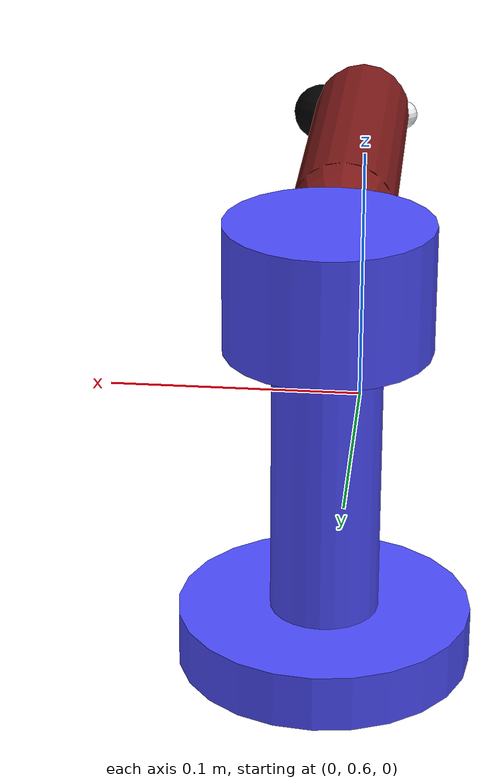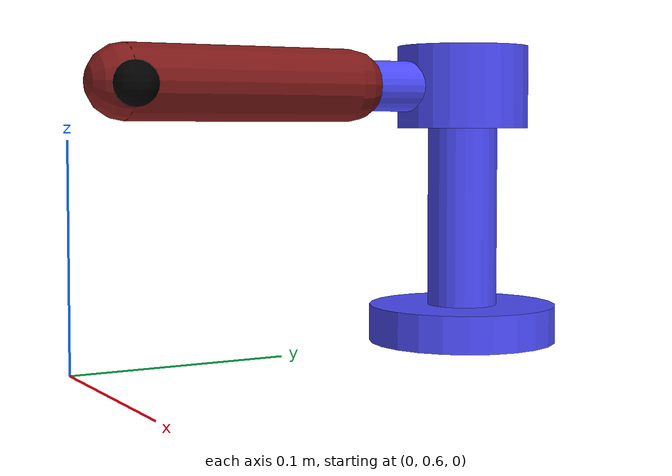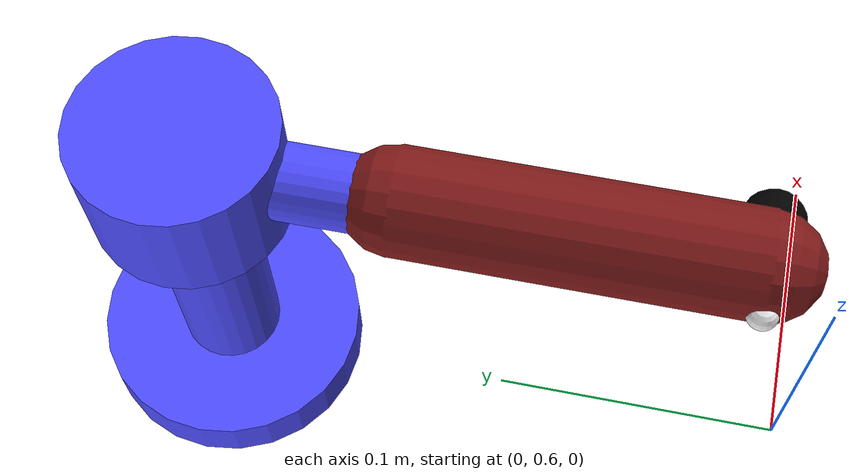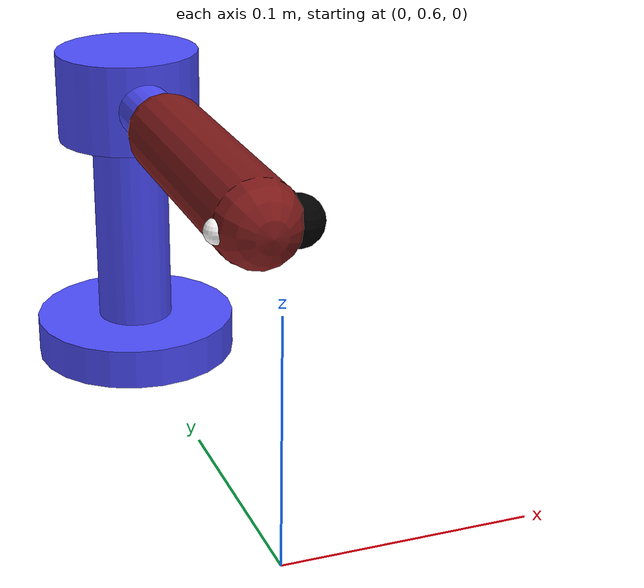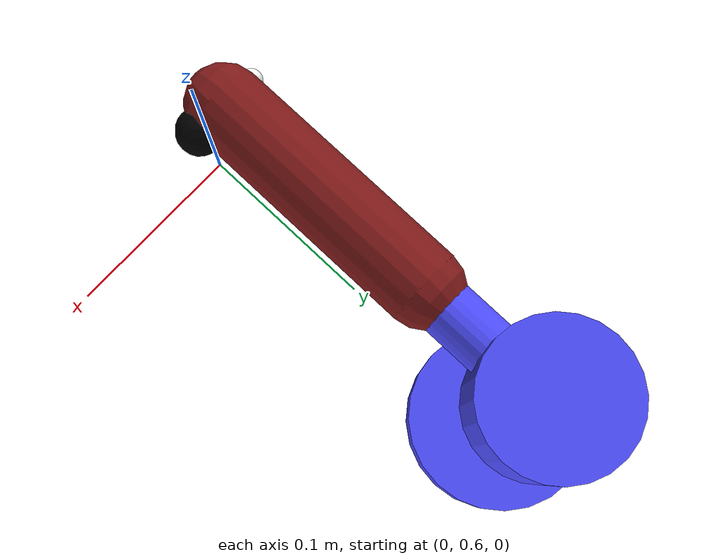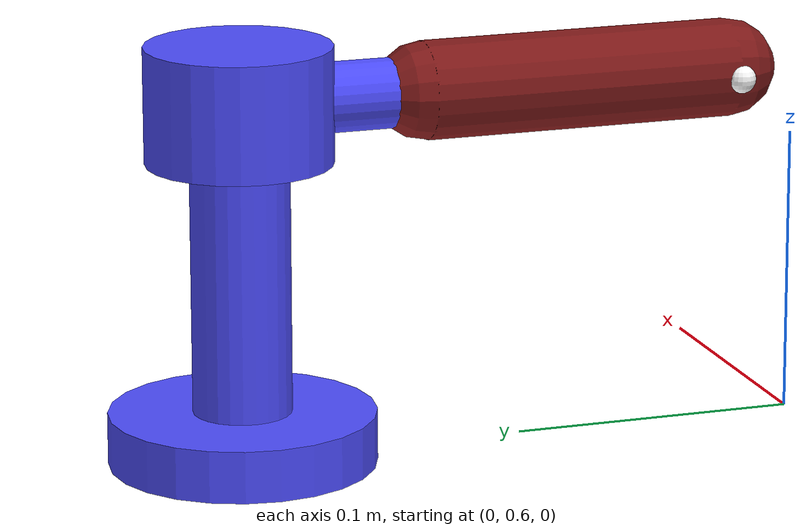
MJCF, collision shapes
<mujoco model="faucet">
    <compiler angle="radian" inertiafromgeom="auto" inertiagrouprange="4 5"/>
    <asset>
      <texture name="T_fauc_met" type="cube" file="textures/metal2.png"/>

      <material name="faucet_col" rgba="0.3 0.3 1.0 0.5" shininess="0" specular="0"/>
      <material name="faucet_white" rgba=".75 .75 .75 1" shininess="1" reflectance=".7" specular=".5"/>
      <material name="faucet_red" rgba=".5 .1 .1 1" shininess="1" reflectance=".7" specular=".5"/>

      <material name="faucet_metal" rgba=".7 .7 .7 1" texture="T_fauc_met" shininess="1" reflectance="1" specular=".5"/>

      <mesh file="meshes/faucet/faucetbase.stl" name="faucetbase"/>
      <mesh file="meshes/faucet/faucethandle1.stl" name="faucethandle1"/>
      <mesh file="meshes/faucet/faucethead.stl" name="faucethead"/>
    </asset>

    <default>
      <default class="faucet_base">
          <joint armature="0.001" damping="2" limited="true"/>
          <geom conaffinity="0" contype="0" group="1" type="mesh"/>
          <position ctrllimited="true" ctrlrange="0 1.57"/>
      </default>
      <default class="faucet_viz">
        <geom condim="4" type="mesh"/>
      </default>
      <default class="faucet_col">
        <geom conaffinity="1" condim="3" contype="1" group="0" material="faucet_col" solimp="0.99 0.99 0.01" solref="0.01 1"/>
      </default>
    </default>

    <worldbody>
    <body>
        <body name="object" pos="0 0.8 0">
            <geom class="faucet_base" material="faucet_metal" mesh="faucetbase" pos="0 0 0.088"/>
            <geom class="faucet_col" pos="0 0 0.009" size="0.046 0.009" type="cylinder"/>
            <geom class="faucet_col" pos="0 0 0.061" size="0.017 0.044" type="cylinder"/>
            <body name="faucet_link2" pos="0 0 0.124">
                <joint name="knob_Joint_1" type="hinge" range="-1.57 1.57" axis="0 0 1"/>
                <geom class="faucet_base" material="faucet_metal" euler="1.57 0 0" mesh="faucethandle1" pos="0 -0.06 0.001"/>
                <geom class="faucet_base" material="faucet_metal" mesh="faucethead" pos="0 0 0.001"/>
                <geom class="faucet_base" material="faucet_red" euler="1.57 0 0" pos="0 -0.12 0.001" size="0.017 0.055" type="capsule"/>

                <geom class="faucet_col" euler="1.57 0 0" pos="0 -0.05 0.001" size="0.012 0.021" type="cylinder"/>
                <geom class="faucet_col" euler="1.57 0 0" pos="0 -0.12 0.001" size="0.017 0.055" type="capsule"/>
                <geom class="faucet_col" pos="0 0 0.001" size="0.032 0.02" type="cylinder"/>

                <site name="handleStartClose" pos="0.015 -0.175 0" size="0.01" rgba="0 0 0 1"/>
                <site name="handleStartOpen" pos="-0.015 -0.175 0" size="0.005" rgba="1 1 1 1"/>
            </body>
        </body>
      <site rgba="0 0 0 0" size="0.0025" pos="0 0 -0.03" name="bottom_site" />
      <site rgba="0 0 0 0" size="0.0025" pos="0 0 0.03" name="top_site" />
      <site rgba="0 0 0 0" size="0.0025" pos="0.0075 0.0075 0" name="horizontal_radius_site" />
    </body>
    </worldbody>
</mujoco>
